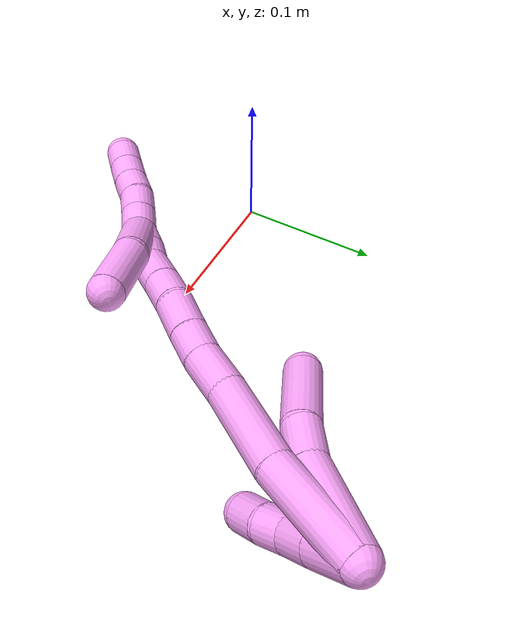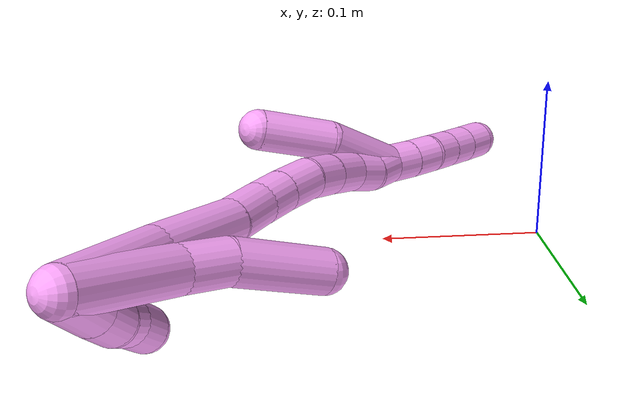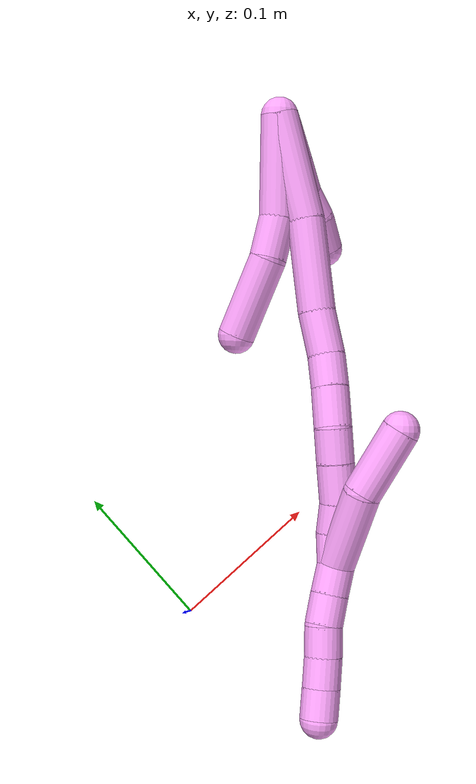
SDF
<sdf version="1.7">
 <world name="default">
  <model name="4">
   <static>0</static>
   <link name="4">
    <collision name="collision-cylinder-e_1_2_8">
     <pose>-0.000263 -0.001308 -0.033377 3.10243 -0.007878 -0.396963</pose>
     <geometry><cylinder><radius>0.0125</radius><length>0.066808</length></cylinder></geometry>
     <surface>
      <friction><ode><mu>1.16</mu><mu2>1.16</mu2><slip1>0</slip1><slip2>0</slip2></ode></friction>
      <contact><ode><kp>1e+06</kp><kd>1</kd><max_vel>0</max_vel><min_depth>0.001</min_depth></ode></contact>
     </surface>
    </collision>
    <visual name="visual-cylinder-e_1_2_8">
     <pose>-0.000263 -0.001308 -0.033377 3.10243 -0.007878 -0.396963</pose>
     <geometry><cylinder><radius>0.0125</radius><length>0.066808</length></cylinder></geometry>
     <material><ambient>1 0.65098 0.996078 1</ambient></material>
    </visual>
    <collision name="collision-cylinder-e_2_8_9">
     <pose>-0.00161 -0.000127 -0.080503 -2.96248 -0.07742 0.814401</pose>
     <geometry><cylinder><radius>0.0125</radius><length>0.028028</length></cylinder></geometry>
     <surface>
      <friction><ode><mu>1.16</mu><mu2>1.16</mu2><slip1>0</slip1><slip2>0</slip2></ode></friction>
      <contact><ode><kp>1e+06</kp><kd>1</kd><max_vel>0</max_vel><min_depth>0.001</min_depth></ode></contact>
     </surface>
    </collision>
    <visual name="visual-cylinder-e_2_8_9">
     <pose>-0.00161 -0.000127 -0.080503 -2.96248 -0.07742 0.814401</pose>
     <geometry><cylinder><radius>0.0125</radius><length>0.028028</length></cylinder></geometry>
     <material><ambient>1 0.65098 0.996078 1</ambient></material>
    </visual>
    <collision name="collision-cylinder-e_3_9_6">
     <pose>0.000336 0.011426 -0.120125 -2.80465 0.110062 -0.626432</pose>
     <geometry><cylinder><radius>0.0125</radius><length>0.055164</length></cylinder></geometry>
     <surface>
      <friction><ode><mu>1.16</mu><mu2>1.16</mu2><slip1>0</slip1><slip2>0</slip2></ode></friction>
      <contact><ode><kp>1e+06</kp><kd>1</kd><max_vel>0</max_vel><min_depth>0.001</min_depth></ode></contact>
     </surface>
    </collision>
    <visual name="visual-cylinder-e_3_9_6">
     <pose>0.000336 0.011426 -0.120125 -2.80465 0.110062 -0.626432</pose>
     <geometry><cylinder><radius>0.0125</radius><length>0.055164</length></cylinder></geometry>
     <material><ambient>1 0.65098 0.996078 1</ambient></material>
    </visual>
    <collision name="collision-cylinder-e_1_2_10">
     <pose>0.007908 -0.005643 -0.013224 2.73826 0.502854 1.79708</pose>
     <geometry><cylinder><radius>0.0125</radius><length>0.032819</length></cylinder></geometry>
     <surface>
      <friction><ode><mu>1.16</mu><mu2>1.16</mu2><slip1>0</slip1><slip2>0</slip2></ode></friction>
      <contact><ode><kp>1e+06</kp><kd>1</kd><max_vel>0</max_vel><min_depth>0.001</min_depth></ode></contact>
     </surface>
    </collision>
    <visual name="visual-cylinder-e_1_2_10">
     <pose>0.007908 -0.005643 -0.013224 2.73826 0.502854 1.79708</pose>
     <geometry><cylinder><radius>0.0125</radius><length>0.032819</length></cylinder></geometry>
     <material><ambient>1 0.65098 0.996078 1</ambient></material>
    </visual>
    <collision name="collision-cylinder-e_2_10_11">
     <pose>0.021387 -0.015385 -0.036501 2.75442 0.474105 1.77824</pose>
     <geometry><cylinder><radius>0.0125</radius><length>0.024404</length></cylinder></geometry>
     <surface>
      <friction><ode><mu>1.16</mu><mu2>1.16</mu2><slip1>0</slip1><slip2>0</slip2></ode></friction>
      <contact><ode><kp>1e+06</kp><kd>1</kd><max_vel>0</max_vel><min_depth>0.001</min_depth></ode></contact>
     </surface>
    </collision>
    <visual name="visual-cylinder-e_2_10_11">
     <pose>0.021387 -0.015385 -0.036501 2.75442 0.474105 1.77824</pose>
     <geometry><cylinder><radius>0.0125</radius><length>0.024404</length></cylinder></geometry>
     <material><ambient>1 0.65098 0.996078 1</ambient></material>
    </visual>
    <collision name="collision-cylinder-e_3_11_12">
     <pose>0.030128 -0.024509 -0.054646 2.58588 0.321292 1.03327</pose>
     <geometry><cylinder><radius>0.0125</radius><length>0.020077</length></cylinder></geometry>
     <surface>
      <friction><ode><mu>1.16</mu><mu2>1.16</mu2><slip1>0</slip1><slip2>0</slip2></ode></friction>
      <contact><ode><kp>1e+06</kp><kd>1</kd><max_vel>0</max_vel><min_depth>0.001</min_depth></ode></contact>
     </surface>
    </collision>
    <visual name="visual-cylinder-e_3_11_12">
     <pose>0.030128 -0.024509 -0.054646 2.58588 0.321292 1.03327</pose>
     <geometry><cylinder><radius>0.0125</radius><length>0.020077</length></cylinder></geometry>
     <material><ambient>1 0.65098 0.996078 1</ambient></material>
    </visual>
    <collision name="collision-cylinder-e_4_12_5">
     <pose>0.038011 -0.033196 -0.072391 2.77901 0.42816 1.74063</pose>
     <geometry><cylinder><radius>0.0125</radius><length>0.0227</length></cylinder></geometry>
     <surface>
      <friction><ode><mu>1.16</mu><mu2>1.16</mu2><slip1>0</slip1><slip2>0</slip2></ode></friction>
      <contact><ode><kp>1e+06</kp><kd>1</kd><max_vel>0</max_vel><min_depth>0.001</min_depth></ode></contact>
     </surface>
    </collision>
    <visual name="visual-cylinder-e_4_12_5">
     <pose>0.038011 -0.033196 -0.072391 2.77901 0.42816 1.74063</pose>
     <geometry><cylinder><radius>0.0125</radius><length>0.0227</length></cylinder></geometry>
     <material><ambient>1 0.65098 0.996078 1</ambient></material>
    </visual>
    <collision name="collision-cylinder-e_1_2_13">
     <pose>-0.002228 -0.010687 -0.033838 2.83567 -0.0627 -0.401355</pose>
     <geometry><cylinder><radius>0.0125</radius><length>0.071111</length></cylinder></geometry>
     <surface>
      <friction><ode><mu>1.16</mu><mu2>1.16</mu2><slip1>0</slip1><slip2>0</slip2></ode></friction>
      <contact><ode><kp>1e+06</kp><kd>1</kd><max_vel>0</max_vel><min_depth>0.001</min_depth></ode></contact>
     </surface>
    </collision>
    <visual name="visual-cylinder-e_1_2_13">
     <pose>-0.002228 -0.010687 -0.033838 2.83567 -0.0627 -0.401355</pose>
     <geometry><cylinder><radius>0.0125</radius><length>0.071111</length></cylinder></geometry>
     <material><ambient>1 0.65098 0.996078 1</ambient></material>
    </visual>
    <collision name="collision-cylinder-e_2_13_14">
     <pose>-0.007661 -0.026708 -0.097826 2.96653 -0.104302 -1.07317</pose>
     <geometry><cylinder><radius>0.0125</radius><length>0.061572</length></cylinder></geometry>
     <surface>
      <friction><ode><mu>1.16</mu><mu2>1.16</mu2><slip1>0</slip1><slip2>0</slip2></ode></friction>
      <contact><ode><kp>1e+06</kp><kd>1</kd><max_vel>0</max_vel><min_depth>0.001</min_depth></ode></contact>
     </surface>
    </collision>
    <visual name="visual-cylinder-e_2_13_14">
     <pose>-0.007661 -0.026708 -0.097826 2.96653 -0.104302 -1.07317</pose>
     <geometry><cylinder><radius>0.0125</radius><length>0.061572</length></cylinder></geometry>
     <material><ambient>1 0.65098 0.996078 1</ambient></material>
    </visual>
    <collision name="collision-cylinder-e_3_14_15">
     <pose>-0.01358 -0.035912 -0.142055 2.87326 -0.183756 -1.19792</pose>
     <geometry><cylinder><radius>0.0125</radius><length>0.029701</length></cylinder></geometry>
     <surface>
      <friction><ode><mu>1.16</mu><mu2>1.16</mu2><slip1>0</slip1><slip2>0</slip2></ode></friction>
      <contact><ode><kp>1e+06</kp><kd>1</kd><max_vel>0</max_vel><min_depth>0.001</min_depth></ode></contact>
     </surface>
    </collision>
    <visual name="visual-cylinder-e_3_14_15">
     <pose>-0.01358 -0.035912 -0.142055 2.87326 -0.183756 -1.19792</pose>
     <geometry><cylinder><radius>0.0125</radius><length>0.029701</length></cylinder></geometry>
     <material><ambient>1 0.65098 0.996078 1</ambient></material>
    </visual>
    <collision name="collision-cylinder-e_4_15_16">
     <pose>-0.01882 -0.041488 -0.166462 2.97797 -0.236833 -1.93475</pose>
     <geometry><cylinder><radius>0.0125</radius><length>0.02154</length></cylinder></geometry>
     <surface>
      <friction><ode><mu>1.16</mu><mu2>1.16</mu2><slip1>0</slip1><slip2>0</slip2></ode></friction>
      <contact><ode><kp>1e+06</kp><kd>1</kd><max_vel>0</max_vel><min_depth>0.001</min_depth></ode></contact>
     </surface>
    </collision>
    <visual name="visual-cylinder-e_4_15_16">
     <pose>-0.01882 -0.041488 -0.166462 2.97797 -0.236833 -1.93475</pose>
     <geometry><cylinder><radius>0.0125</radius><length>0.02154</length></cylinder></geometry>
     <material><ambient>1 0.65098 0.996078 1</ambient></material>
    </visual>
    <collision name="collision-cylinder-e_5_16_17">
     <pose>-0.024199 -0.044786 -0.189724 3.01903 -0.215521 -2.10972</pose>
     <geometry><cylinder><radius>0.0125</radius><length>0.026676</length></cylinder></geometry>
     <surface>
      <friction><ode><mu>1.16</mu><mu2>1.16</mu2><slip1>0</slip1><slip2>0</slip2></ode></friction>
      <contact><ode><kp>1e+06</kp><kd>1</kd><max_vel>0</max_vel><min_depth>0.001</min_depth></ode></contact>
     </surface>
    </collision>
    <visual name="visual-cylinder-e_5_16_17">
     <pose>-0.024199 -0.044786 -0.189724 3.01903 -0.215521 -2.10972</pose>
     <geometry><cylinder><radius>0.0125</radius><length>0.026676</length></cylinder></geometry>
     <material><ambient>1 0.65098 0.996078 1</ambient></material>
    </visual>
    <collision name="collision-cylinder-e_6_17_18">
     <pose>-0.027463 -0.047861 -0.214028 3.01204 -0.035865 -0.539471</pose>
     <geometry><cylinder><radius>0.0125</radius><length>0.022951</length></cylinder></geometry>
     <surface>
      <friction><ode><mu>1.16</mu><mu2>1.16</mu2><slip1>0</slip1><slip2>0</slip2></ode></friction>
      <contact><ode><kp>1e+06</kp><kd>1</kd><max_vel>0</max_vel><min_depth>0.001</min_depth></ode></contact>
     </surface>
    </collision>
    <visual name="visual-cylinder-e_6_17_18">
     <pose>-0.027463 -0.047861 -0.214028 3.01204 -0.035865 -0.539471</pose>
     <geometry><cylinder><radius>0.0125</radius><length>0.022951</length></cylinder></geometry>
     <material><ambient>1 0.65098 0.996078 1</ambient></material>
    </visual>
    <collision name="collision-cylinder-e_7_18_19">
     <pose>-0.027884 -0.051171 -0.238339 3.00121 -0.000706 -0.010042</pose>
     <geometry><cylinder><radius>0.0125</radius><length>0.026137</length></cylinder></geometry>
     <surface>
      <friction><ode><mu>1.16</mu><mu2>1.16</mu2><slip1>0</slip1><slip2>0</slip2></ode></friction>
      <contact><ode><kp>1e+06</kp><kd>1</kd><max_vel>0</max_vel><min_depth>0.001</min_depth></ode></contact>
     </surface>
    </collision>
    <visual name="visual-cylinder-e_7_18_19">
     <pose>-0.027884 -0.051171 -0.238339 3.00121 -0.000706 -0.010042</pose>
     <geometry><cylinder><radius>0.0125</radius><length>0.026137</length></cylinder></geometry>
     <material><ambient>1 0.65098 0.996078 1</ambient></material>
    </visual>
    <collision name="collision-cylinder-e_8_19_20">
     <pose>-0.027569 -0.052434 -0.261372 -3.08561 0.032081 -1.04057</pose>
     <geometry><cylinder><radius>0.0125</radius><length>0.020228</length></cylinder></geometry>
     <surface>
      <friction><ode><mu>1.16</mu><mu2>1.16</mu2><slip1>0</slip1><slip2>0</slip2></ode></friction>
      <contact><ode><kp>1e+06</kp><kd>1</kd><max_vel>0</max_vel><min_depth>0.001</min_depth></ode></contact>
     </surface>
    </collision>
    <visual name="visual-cylinder-e_8_19_20">
     <pose>-0.027569 -0.052434 -0.261372 -3.08561 0.032081 -1.04057</pose>
     <geometry><cylinder><radius>0.0125</radius><length>0.020228</length></cylinder></geometry>
     <material><ambient>1 0.65098 0.996078 1</ambient></material>
    </visual>
    <collision name="collision-cylinder-e_9_20_1">
     <pose>-0.029153 -0.052728 -0.281286 3.0543 -0.19124 -2.28698</pose>
     <geometry><cylinder><radius>0.0125</radius><length>0.020085</length></cylinder></geometry>
     <surface>
      <friction><ode><mu>1.16</mu><mu2>1.16</mu2><slip1>0</slip1><slip2>0</slip2></ode></friction>
      <contact><ode><kp>1e+06</kp><kd>1</kd><max_vel>0</max_vel><min_depth>0.001</min_depth></ode></contact>
     </surface>
    </collision>
    <visual name="visual-cylinder-e_9_20_1">
     <pose>-0.029153 -0.052728 -0.281286 3.0543 -0.19124 -2.28698</pose>
     <geometry><cylinder><radius>0.0125</radius><length>0.020085</length></cylinder></geometry>
     <material><ambient>1 0.65098 0.996078 1</ambient></material>
    </visual>
    <collision name="collision-cylinder-e_1_1_21">
     <pose>-0.032802 -0.051947 -0.300818 -2.97423 -0.174835 1.6147</pose>
     <geometry><cylinder><radius>0.0125</radius><length>0.02</length></cylinder></geometry>
     <surface>
      <friction><ode><mu>1.16</mu><mu2>1.16</mu2><slip1>0</slip1><slip2>0</slip2></ode></friction>
      <contact><ode><kp>1e+06</kp><kd>1</kd><max_vel>0</max_vel><min_depth>0.001</min_depth></ode></contact>
     </surface>
    </collision>
    <visual name="visual-cylinder-e_1_1_21">
     <pose>-0.032802 -0.051947 -0.300818 -2.97423 -0.174835 1.6147</pose>
     <geometry><cylinder><radius>0.0125</radius><length>0.02</length></cylinder></geometry>
     <material><ambient>1 0.65098 0.996078 1</ambient></material>
    </visual>
    <collision name="collision-cylinder-e_2_21_22">
     <pose>-0.036574 -0.048919 -0.320221 -2.99943 -0.204684 1.92917</pose>
     <geometry><cylinder><radius>0.0125</radius><length>0.02</length></cylinder></geometry>
     <surface>
      <friction><ode><mu>1.16</mu><mu2>1.16</mu2><slip1>0</slip1><slip2>0</slip2></ode></friction>
      <contact><ode><kp>1e+06</kp><kd>1</kd><max_vel>0</max_vel><min_depth>0.001</min_depth></ode></contact>
     </surface>
    </collision>
    <visual name="visual-cylinder-e_2_21_22">
     <pose>-0.036574 -0.048919 -0.320221 -2.99943 -0.204684 1.92917</pose>
     <geometry><cylinder><radius>0.0125</radius><length>0.02</length></cylinder></geometry>
     <material><ambient>1 0.65098 0.996078 1</ambient></material>
    </visual>
    <collision name="collision-cylinder-e_3_22_23">
     <pose>-0.039794 -0.047946 -0.339834 3.09984 -0.119026 -2.46747</pose>
     <geometry><cylinder><radius>0.0125</radius><length>0.02</length></cylinder></geometry>
     <surface>
      <friction><ode><mu>1.16</mu><mu2>1.16</mu2><slip1>0</slip1><slip2>0</slip2></ode></friction>
      <contact><ode><kp>1e+06</kp><kd>1</kd><max_vel>0</max_vel><min_depth>0.001</min_depth></ode></contact>
     </surface>
    </collision>
    <visual name="visual-cylinder-e_3_22_23">
     <pose>-0.039794 -0.047946 -0.339834 3.09984 -0.119026 -2.46747</pose>
     <geometry><cylinder><radius>0.0125</radius><length>0.02</length></cylinder></geometry>
     <material><ambient>1 0.65098 0.996078 1</ambient></material>
    </visual>
    <collision name="collision-cylinder-e_4_23_24">
     <pose>-0.042547 -0.04823 -0.35963 -3.12833 -0.157232 2.97367</pose>
     <geometry><cylinder><radius>0.0125</radius><length>0.02</length></cylinder></geometry>
     <surface>
      <friction><ode><mu>1.16</mu><mu2>1.16</mu2><slip1>0</slip1><slip2>0</slip2></ode></friction>
      <contact><ode><kp>1e+06</kp><kd>1</kd><max_vel>0</max_vel><min_depth>0.001</min_depth></ode></contact>
     </surface>
    </collision>
    <visual name="visual-cylinder-e_4_23_24">
     <pose>-0.042547 -0.04823 -0.35963 -3.12833 -0.157232 2.97367</pose>
     <geometry><cylinder><radius>0.0125</radius><length>0.02</length></cylinder></geometry>
     <material><ambient>1 0.65098 0.996078 1</ambient></material>
    </visual>
    <collision name="collision-cylinder-e_5_24_4">
     <pose>-0.045866 -0.047833 -0.379347 -3.11454 -0.176261 2.83773</pose>
     <geometry><cylinder><radius>0.0125</radius><length>0.02</length></cylinder></geometry>
     <surface>
      <friction><ode><mu>1.16</mu><mu2>1.16</mu2><slip1>0</slip1><slip2>0</slip2></ode></friction>
      <contact><ode><kp>1e+06</kp><kd>1</kd><max_vel>0</max_vel><min_depth>0.001</min_depth></ode></contact>
     </surface>
    </collision>
    <visual name="visual-cylinder-e_5_24_4">
     <pose>-0.045866 -0.047833 -0.379347 -3.11454 -0.176261 2.83773</pose>
     <geometry><cylinder><radius>0.0125</radius><length>0.02</length></cylinder></geometry>
     <material><ambient>1 0.65098 0.996078 1</ambient></material>
    </visual>
    <collision name="collision-cylinder-e_1_1_25">
     <pose>-0.03816 -0.059846 -0.266373 0.247831 -0.271338 -0.034002</pose>
     <geometry><cylinder><radius>0.0125</radius><length>0.052968</length></cylinder></geometry>
     <surface>
      <friction><ode><mu>1.16</mu><mu2>1.16</mu2><slip1>0</slip1><slip2>0</slip2></ode></friction>
      <contact><ode><kp>1e+06</kp><kd>1</kd><max_vel>0</max_vel><min_depth>0.001</min_depth></ode></contact>
     </surface>
    </collision>
    <visual name="visual-cylinder-e_1_1_25">
     <pose>-0.03816 -0.059846 -0.266373 0.247831 -0.271338 -0.034002</pose>
     <geometry><cylinder><radius>0.0125</radius><length>0.052968</length></cylinder></geometry>
     <material><ambient>1 0.65098 0.996078 1</ambient></material>
    </visual>
    <collision name="collision-cylinder-e_2_25_3">
     <pose>-0.04667 -0.076818 -0.220751 0.473904 -0.060034 -0.014502</pose>
     <geometry><cylinder><radius>0.0125</radius><length>0.047032</length></cylinder></geometry>
     <surface>
      <friction><ode><mu>1.16</mu><mu2>1.16</mu2><slip1>0</slip1><slip2>0</slip2></ode></friction>
      <contact><ode><kp>1e+06</kp><kd>1</kd><max_vel>0</max_vel><min_depth>0.001</min_depth></ode></contact>
     </surface>
    </collision>
    <visual name="visual-cylinder-e_2_25_3">
     <pose>-0.04667 -0.076818 -0.220751 0.473904 -0.060034 -0.014502</pose>
     <geometry><cylinder><radius>0.0125</radius><length>0.047032</length></cylinder></geometry>
     <material><ambient>1 0.65098 0.996078 1</ambient></material>
    </visual>
    <collision name="collision-sphere-3">
     <pose>-0.048081 -0.08753 -0.199864 0 -0 0</pose>
     <geometry><sphere><radius>0.0125</radius></sphere></geometry>
     <surface>
      <friction><ode><mu>1.16</mu><mu2>1.16</mu2><slip1>0</slip1><slip2>0</slip2></ode></friction>
      <contact><ode><kp>1e+06</kp><kd>1</kd><max_vel>0</max_vel><min_depth>0.001</min_depth></ode></contact>
     </surface>
    </collision>
    <visual name="visual-sphere-3">
     <pose>-0.048081 -0.08753 -0.199864 0 -0 0</pose>
     <geometry><sphere><radius>0.0125</radius></sphere></geometry>
     <material><ambient>1 0.65098 0.996078 1</ambient></material>
    </visual>
    <collision name="collision-sphere-25">
     <pose>-0.045259 -0.066105 -0.241637 0 -0 0</pose>
     <geometry><sphere><radius>0.0125</radius></sphere></geometry>
     <surface>
      <friction><ode><mu>1.16</mu><mu2>1.16</mu2><slip1>0</slip1><slip2>0</slip2></ode></friction>
      <contact><ode><kp>1e+06</kp><kd>1</kd><max_vel>0</max_vel><min_depth>0.001</min_depth></ode></contact>
     </surface>
    </collision>
    <visual name="visual-sphere-25">
     <pose>-0.045259 -0.066105 -0.241637 0 -0 0</pose>
     <geometry><sphere><radius>0.0125</radius></sphere></geometry>
     <material><ambient>1 0.65098 0.996078 1</ambient></material>
    </visual>
    <collision name="collision-sphere-4">
     <pose>-0.04762 -0.047566 -0.389189 0 -0 0</pose>
     <geometry><sphere><radius>0.0125</radius></sphere></geometry>
     <surface>
      <friction><ode><mu>1.16</mu><mu2>1.16</mu2><slip1>0</slip1><slip2>0</slip2></ode></friction>
      <contact><ode><kp>1e+06</kp><kd>1</kd><max_vel>0</max_vel><min_depth>0.001</min_depth></ode></contact>
     </surface>
    </collision>
    <visual name="visual-sphere-4">
     <pose>-0.04762 -0.047566 -0.389189 0 -0 0</pose>
     <geometry><sphere><radius>0.0125</radius></sphere></geometry>
     <material><ambient>1 0.65098 0.996078 1</ambient></material>
    </visual>
    <collision name="collision-sphere-24">
     <pose>-0.044113 -0.048099 -0.369506 0 -0 0</pose>
     <geometry><sphere><radius>0.0125</radius></sphere></geometry>
     <surface>
      <friction><ode><mu>1.16</mu><mu2>1.16</mu2><slip1>0</slip1><slip2>0</slip2></ode></friction>
      <contact><ode><kp>1e+06</kp><kd>1</kd><max_vel>0</max_vel><min_depth>0.001</min_depth></ode></contact>
     </surface>
    </collision>
    <visual name="visual-sphere-24">
     <pose>-0.044113 -0.048099 -0.369506 0 -0 0</pose>
     <geometry><sphere><radius>0.0125</radius></sphere></geometry>
     <material><ambient>1 0.65098 0.996078 1</ambient></material>
    </visual>
    <collision name="collision-sphere-23">
     <pose>-0.040981 -0.048361 -0.349754 0 -0 0</pose>
     <geometry><sphere><radius>0.0125</radius></sphere></geometry>
     <surface>
      <friction><ode><mu>1.16</mu><mu2>1.16</mu2><slip1>0</slip1><slip2>0</slip2></ode></friction>
      <contact><ode><kp>1e+06</kp><kd>1</kd><max_vel>0</max_vel><min_depth>0.001</min_depth></ode></contact>
     </surface>
    </collision>
    <visual name="visual-sphere-23">
     <pose>-0.040981 -0.048361 -0.349754 0 -0 0</pose>
     <geometry><sphere><radius>0.0125</radius></sphere></geometry>
     <material><ambient>1 0.65098 0.996078 1</ambient></material>
    </visual>
    <collision name="collision-sphere-22">
     <pose>-0.038606 -0.047532 -0.329913 0 -0 0</pose>
     <geometry><sphere><radius>0.0125</radius></sphere></geometry>
     <surface>
      <friction><ode><mu>1.16</mu><mu2>1.16</mu2><slip1>0</slip1><slip2>0</slip2></ode></friction>
      <contact><ode><kp>1e+06</kp><kd>1</kd><max_vel>0</max_vel><min_depth>0.001</min_depth></ode></contact>
     </surface>
    </collision>
    <visual name="visual-sphere-22">
     <pose>-0.038606 -0.047532 -0.329913 0 -0 0</pose>
     <geometry><sphere><radius>0.0125</radius></sphere></geometry>
     <material><ambient>1 0.65098 0.996078 1</ambient></material>
    </visual>
    <collision name="collision-sphere-21">
     <pose>-0.034541 -0.050306 -0.310528 0 -0 0</pose>
     <geometry><sphere><radius>0.0125</radius></sphere></geometry>
     <surface>
      <friction><ode><mu>1.16</mu><mu2>1.16</mu2><slip1>0</slip1><slip2>0</slip2></ode></friction>
      <contact><ode><kp>1e+06</kp><kd>1</kd><max_vel>0</max_vel><min_depth>0.001</min_depth></ode></contact>
     </surface>
    </collision>
    <visual name="visual-sphere-21">
     <pose>-0.034541 -0.050306 -0.310528 0 -0 0</pose>
     <geometry><sphere><radius>0.0125</radius></sphere></geometry>
     <material><ambient>1 0.65098 0.996078 1</ambient></material>
    </visual>
    <collision name="collision-sphere-1">
     <pose>-0.031062 -0.053587 -0.291108 0 -0 0</pose>
     <geometry><sphere><radius>0.0125</radius></sphere></geometry>
     <surface>
      <friction><ode><mu>1.16</mu><mu2>1.16</mu2><slip1>0</slip1><slip2>0</slip2></ode></friction>
      <contact><ode><kp>1e+06</kp><kd>1</kd><max_vel>0</max_vel><min_depth>0.001</min_depth></ode></contact>
     </surface>
    </collision>
    <visual name="visual-sphere-1">
     <pose>-0.031062 -0.053587 -0.291108 0 -0 0</pose>
     <geometry><sphere><radius>0.0125</radius></sphere></geometry>
     <material><ambient>1 0.65098 0.996078 1</ambient></material>
    </visual>
    <collision name="collision-sphere-11">
     <pose>0.026958 -0.019484 -0.046554 0 -0 0</pose>
     <geometry><sphere><radius>0.0125</radius></sphere></geometry>
     <surface>
      <friction><ode><mu>1.16</mu><mu2>1.16</mu2><slip1>0</slip1><slip2>0</slip2></ode></friction>
      <contact><ode><kp>1e+06</kp><kd>1</kd><max_vel>0</max_vel><min_depth>0.001</min_depth></ode></contact>
     </surface>
    </collision>
    <visual name="visual-sphere-11">
     <pose>0.026958 -0.019484 -0.046554 0 -0 0</pose>
     <geometry><sphere><radius>0.0125</radius></sphere></geometry>
     <material><ambient>1 0.65098 0.996078 1</ambient></material>
    </visual>
    <collision name="collision-sphere-10">
     <pose>0.015816 -0.011286 -0.026449 0 -0 0</pose>
     <geometry><sphere><radius>0.0125</radius></sphere></geometry>
     <surface>
      <friction><ode><mu>1.16</mu><mu2>1.16</mu2><slip1>0</slip1><slip2>0</slip2></ode></friction>
      <contact><ode><kp>1e+06</kp><kd>1</kd><max_vel>0</max_vel><min_depth>0.001</min_depth></ode></contact>
     </surface>
    </collision>
    <visual name="visual-sphere-10">
     <pose>0.015816 -0.011286 -0.026449 0 -0 0</pose>
     <geometry><sphere><radius>0.0125</radius></sphere></geometry>
     <material><ambient>1 0.65098 0.996078 1</ambient></material>
    </visual>
    <collision name="collision-sphere-6">
     <pose>0.003365 0.02049 -0.145999 0 -0 0</pose>
     <geometry><sphere><radius>0.0125</radius></sphere></geometry>
     <surface>
      <friction><ode><mu>1.16</mu><mu2>1.16</mu2><slip1>0</slip1><slip2>0</slip2></ode></friction>
      <contact><ode><kp>1e+06</kp><kd>1</kd><max_vel>0</max_vel><min_depth>0.001</min_depth></ode></contact>
     </surface>
    </collision>
    <visual name="visual-sphere-6">
     <pose>0.003365 0.02049 -0.145999 0 -0 0</pose>
     <geometry><sphere><radius>0.0125</radius></sphere></geometry>
     <material><ambient>1 0.65098 0.996078 1</ambient></material>
    </visual>
    <collision name="collision-sphere-9">
     <pose>-0.002694 0.002362 -0.094252 0 -0 0</pose>
     <geometry><sphere><radius>0.0125</radius></sphere></geometry>
     <surface>
      <friction><ode><mu>1.16</mu><mu2>1.16</mu2><slip1>0</slip1><slip2>0</slip2></ode></friction>
      <contact><ode><kp>1e+06</kp><kd>1</kd><max_vel>0</max_vel><min_depth>0.001</min_depth></ode></contact>
     </surface>
    </collision>
    <visual name="visual-sphere-9">
     <pose>-0.002694 0.002362 -0.094252 0 -0 0</pose>
     <geometry><sphere><radius>0.0125</radius></sphere></geometry>
     <material><ambient>1 0.65098 0.996078 1</ambient></material>
    </visual>
    <collision name="collision-sphere-2">
     <geometry><sphere><radius>0.0125</radius></sphere></geometry>
     <surface>
      <friction><ode><mu>1.16</mu><mu2>1.16</mu2><slip1>0</slip1><slip2>0</slip2></ode></friction>
      <contact><ode><kp>1e+06</kp><kd>1</kd><max_vel>0</max_vel><min_depth>0.001</min_depth></ode></contact>
     </surface>
    </collision>
    <visual name="visual-sphere-2">
     <geometry><sphere><radius>0.0125</radius></sphere></geometry>
     <material><ambient>1 0.65098 0.996078 1</ambient></material>
    </visual>
    <collision name="collision-sphere-19">
     <pose>-0.027893 -0.052999 -0.251279 0 -0 0</pose>
     <geometry><sphere><radius>0.0125</radius></sphere></geometry>
     <surface>
      <friction><ode><mu>1.16</mu><mu2>1.16</mu2><slip1>0</slip1><slip2>0</slip2></ode></friction>
      <contact><ode><kp>1e+06</kp><kd>1</kd><max_vel>0</max_vel><min_depth>0.001</min_depth></ode></contact>
     </surface>
    </collision>
    <visual name="visual-sphere-19">
     <pose>-0.027893 -0.052999 -0.251279 0 -0 0</pose>
     <geometry><sphere><radius>0.0125</radius></sphere></geometry>
     <material><ambient>1 0.65098 0.996078 1</ambient></material>
    </visual>
    <collision name="collision-sphere-8">
     <pose>-0.000526 -0.002616 -0.066755 0 -0 0</pose>
     <geometry><sphere><radius>0.0125</radius></sphere></geometry>
     <surface>
      <friction><ode><mu>1.16</mu><mu2>1.16</mu2><slip1>0</slip1><slip2>0</slip2></ode></friction>
      <contact><ode><kp>1e+06</kp><kd>1</kd><max_vel>0</max_vel><min_depth>0.001</min_depth></ode></contact>
     </surface>
    </collision>
    <visual name="visual-sphere-8">
     <pose>-0.000526 -0.002616 -0.066755 0 -0 0</pose>
     <geometry><sphere><radius>0.0125</radius></sphere></geometry>
     <material><ambient>1 0.65098 0.996078 1</ambient></material>
    </visual>
    <collision name="collision-sphere-12">
     <pose>0.033298 -0.029534 -0.062737 0 -0 0</pose>
     <geometry><sphere><radius>0.0125</radius></sphere></geometry>
     <surface>
      <friction><ode><mu>1.16</mu><mu2>1.16</mu2><slip1>0</slip1><slip2>0</slip2></ode></friction>
      <contact><ode><kp>1e+06</kp><kd>1</kd><max_vel>0</max_vel><min_depth>0.001</min_depth></ode></contact>
     </surface>
    </collision>
    <visual name="visual-sphere-12">
     <pose>0.033298 -0.029534 -0.062737 0 -0 0</pose>
     <geometry><sphere><radius>0.0125</radius></sphere></geometry>
     <material><ambient>1 0.65098 0.996078 1</ambient></material>
    </visual>
    <collision name="collision-sphere-5">
     <pose>0.042723 -0.036859 -0.082045 0 -0 0</pose>
     <geometry><sphere><radius>0.0125</radius></sphere></geometry>
     <surface>
      <friction><ode><mu>1.16</mu><mu2>1.16</mu2><slip1>0</slip1><slip2>0</slip2></ode></friction>
      <contact><ode><kp>1e+06</kp><kd>1</kd><max_vel>0</max_vel><min_depth>0.001</min_depth></ode></contact>
     </surface>
    </collision>
    <visual name="visual-sphere-5">
     <pose>0.042723 -0.036859 -0.082045 0 -0 0</pose>
     <geometry><sphere><radius>0.0125</radius></sphere></geometry>
     <material><ambient>1 0.65098 0.996078 1</ambient></material>
    </visual>
    <collision name="collision-sphere-13">
     <pose>-0.004456 -0.021375 -0.067676 0 -0 0</pose>
     <geometry><sphere><radius>0.0125</radius></sphere></geometry>
     <surface>
      <friction><ode><mu>1.16</mu><mu2>1.16</mu2><slip1>0</slip1><slip2>0</slip2></ode></friction>
      <contact><ode><kp>1e+06</kp><kd>1</kd><max_vel>0</max_vel><min_depth>0.001</min_depth></ode></contact>
     </surface>
    </collision>
    <visual name="visual-sphere-13">
     <pose>-0.004456 -0.021375 -0.067676 0 -0 0</pose>
     <geometry><sphere><radius>0.0125</radius></sphere></geometry>
     <material><ambient>1 0.65098 0.996078 1</ambient></material>
    </visual>
    <collision name="collision-sphere-14">
     <pose>-0.010866 -0.032041 -0.127977 0 -0 0</pose>
     <geometry><sphere><radius>0.0125</radius></sphere></geometry>
     <surface>
      <friction><ode><mu>1.16</mu><mu2>1.16</mu2><slip1>0</slip1><slip2>0</slip2></ode></friction>
      <contact><ode><kp>1e+06</kp><kd>1</kd><max_vel>0</max_vel><min_depth>0.001</min_depth></ode></contact>
     </surface>
    </collision>
    <visual name="visual-sphere-14">
     <pose>-0.010866 -0.032041 -0.127977 0 -0 0</pose>
     <geometry><sphere><radius>0.0125</radius></sphere></geometry>
     <material><ambient>1 0.65098 0.996078 1</ambient></material>
    </visual>
    <collision name="collision-sphere-15">
     <pose>-0.016293 -0.039783 -0.156133 0 -0 0</pose>
     <geometry><sphere><radius>0.0125</radius></sphere></geometry>
     <surface>
      <friction><ode><mu>1.16</mu><mu2>1.16</mu2><slip1>0</slip1><slip2>0</slip2></ode></friction>
      <contact><ode><kp>1e+06</kp><kd>1</kd><max_vel>0</max_vel><min_depth>0.001</min_depth></ode></contact>
     </surface>
    </collision>
    <visual name="visual-sphere-15">
     <pose>-0.016293 -0.039783 -0.156133 0 -0 0</pose>
     <geometry><sphere><radius>0.0125</radius></sphere></geometry>
     <material><ambient>1 0.65098 0.996078 1</ambient></material>
    </visual>
    <collision name="collision-sphere-16">
     <pose>-0.021347 -0.043193 -0.176792 0 -0 0</pose>
     <geometry><sphere><radius>0.0125</radius></sphere></geometry>
     <surface>
      <friction><ode><mu>1.16</mu><mu2>1.16</mu2><slip1>0</slip1><slip2>0</slip2></ode></friction>
      <contact><ode><kp>1e+06</kp><kd>1</kd><max_vel>0</max_vel><min_depth>0.001</min_depth></ode></contact>
     </surface>
    </collision>
    <visual name="visual-sphere-16">
     <pose>-0.021347 -0.043193 -0.176792 0 -0 0</pose>
     <geometry><sphere><radius>0.0125</radius></sphere></geometry>
     <material><ambient>1 0.65098 0.996078 1</ambient></material>
    </visual>
    <collision name="collision-sphere-17">
     <pose>-0.027052 -0.046379 -0.202656 0 -0 0</pose>
     <geometry><sphere><radius>0.0125</radius></sphere></geometry>
     <surface>
      <friction><ode><mu>1.16</mu><mu2>1.16</mu2><slip1>0</slip1><slip2>0</slip2></ode></friction>
      <contact><ode><kp>1e+06</kp><kd>1</kd><max_vel>0</max_vel><min_depth>0.001</min_depth></ode></contact>
     </surface>
    </collision>
    <visual name="visual-sphere-17">
     <pose>-0.027052 -0.046379 -0.202656 0 -0 0</pose>
     <geometry><sphere><radius>0.0125</radius></sphere></geometry>
     <material><ambient>1 0.65098 0.996078 1</ambient></material>
    </visual>
    <collision name="collision-sphere-18">
     <pose>-0.027875 -0.049342 -0.225399 0 -0 0</pose>
     <geometry><sphere><radius>0.0125</radius></sphere></geometry>
     <surface>
      <friction><ode><mu>1.16</mu><mu2>1.16</mu2><slip1>0</slip1><slip2>0</slip2></ode></friction>
      <contact><ode><kp>1e+06</kp><kd>1</kd><max_vel>0</max_vel><min_depth>0.001</min_depth></ode></contact>
     </surface>
    </collision>
    <visual name="visual-sphere-18">
     <pose>-0.027875 -0.049342 -0.225399 0 -0 0</pose>
     <geometry><sphere><radius>0.0125</radius></sphere></geometry>
     <material><ambient>1 0.65098 0.996078 1</ambient></material>
    </visual>
    <collision name="collision-sphere-20">
     <pose>-0.027245 -0.051868 -0.271465 0 -0 0</pose>
     <geometry><sphere><radius>0.0125</radius></sphere></geometry>
     <surface>
      <friction><ode><mu>1.16</mu><mu2>1.16</mu2><slip1>0</slip1><slip2>0</slip2></ode></friction>
      <contact><ode><kp>1e+06</kp><kd>1</kd><max_vel>0</max_vel><min_depth>0.001</min_depth></ode></contact>
     </surface>
    </collision>
    <visual name="visual-sphere-20">
     <pose>-0.027245 -0.051868 -0.271465 0 -0 0</pose>
     <geometry><sphere><radius>0.0125</radius></sphere></geometry>
     <material><ambient>1 0.65098 0.996078 1</ambient></material>
    </visual>
    <inertial>
     <pose>-0.014066 -0.03075 -0.156054 0 -0 0</pose>
     <mass>0.75</mass>
     <inertia>
      <ixx>5.2e-05</ixx>
      <ixy>0</ixy>
      <ixz>0</ixz>
      <iyy>-0.000107</iyy>
      <iyz>0</iyz>
      <izz>-1.3e-05</izz>
     </inertia>
    </inertial>
   </link>
   <pose>0.260969 0.200163 0.07176 -0.017817 1.3391 0.760514</pose>
  </model>
 </world>
</sdf>
